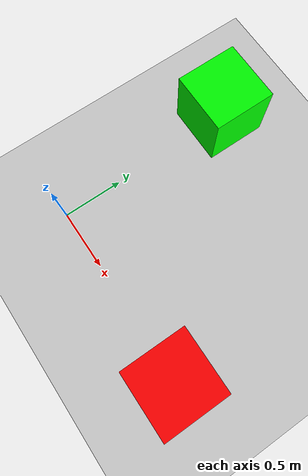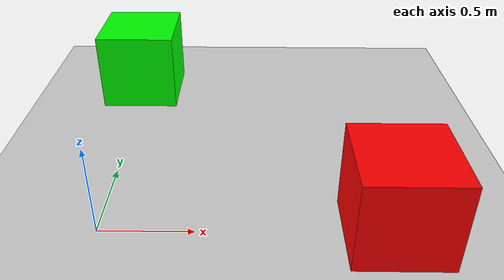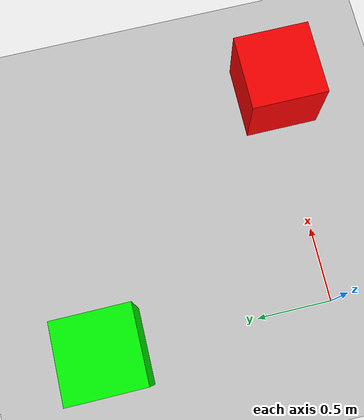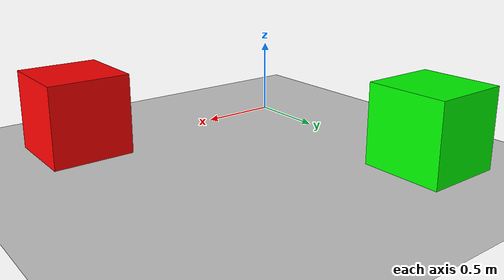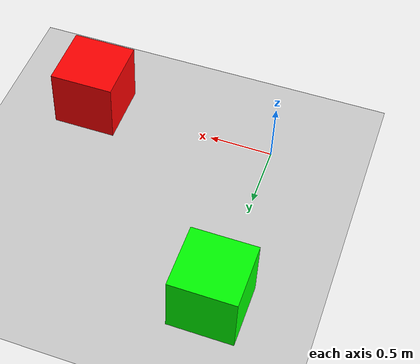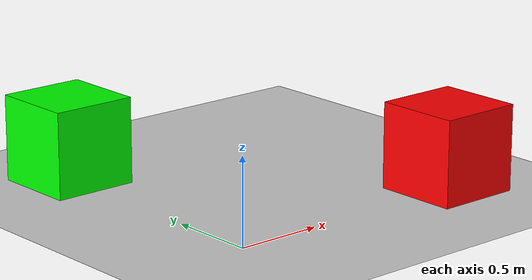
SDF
<?xml version="1.0"?>
<sdf version="1.6">
  <world name="default">
    <scene>
      <ambient>1.0 1.0 1.0 1</ambient>
      <background>0.3 0.3 0.3 1</background>
      <shadows>0</shadows>
      <grid>1</grid>
      <origin_visual>1</origin_visual>
    </scene>
    <physics type="ode">
      <max_step_size>0.001</max_step_size>
      <real_time_update_rate>1000</real_time_update_rate>
    </physics>
    <include>
      <uri>model://ground_plane</uri>
    </include>
    <include>
      <uri>model://sun</uri>
    </include>
    <light name="spot_light" type="directional">
      <pose>0 0 5 0 0 0</pose>
      <diffuse>1 1 1 1</diffuse>
      <specular>0 0 0 1</specular>
      <direction>0 0 -1</direction>
      <attenuation>
        <range>100</range>
        <constant>1</constant>
        <linear>0</linear>
        <quadratic>0</quadratic>
      </attenuation>
      <cast_shadows>0</cast_shadows>
    </light>
    <model name="red_box">
      <pose>1.5 0 0.25 0 0 0</pose>
      <link name="link">
        <collision name="collision">
          <geometry><box><size>0.5 0.5 0.5</size></box></geometry>
        </collision>
        <visual name="visual">
          <geometry><box><size>0.5 0.5 0.5</size></box></geometry>
          <material><ambient>1 0 0 1</ambient><diffuse>1 0 0 1</diffuse></material>
        </visual>
      </link>
    </model>
    <model name="green_box">
      <pose>0 1.5 0.25 0 0 0</pose>
      <link name="link">
        <collision name="collision">
          <geometry><box><size>0.5 0.5 0.5</size></box></geometry>
        </collision>
        <visual name="visual">
          <geometry><box><size>0.5 0.5 0.5</size></box></geometry>
          <material><ambient>0 1 0 1</ambient><diffuse>0 1 0 1</diffuse></material>
        </visual>
      </link>
    </model>
  </world>
</sdf>
